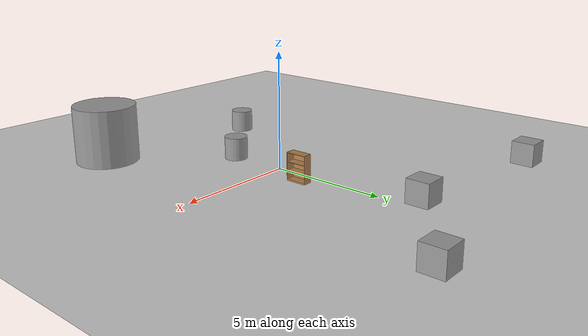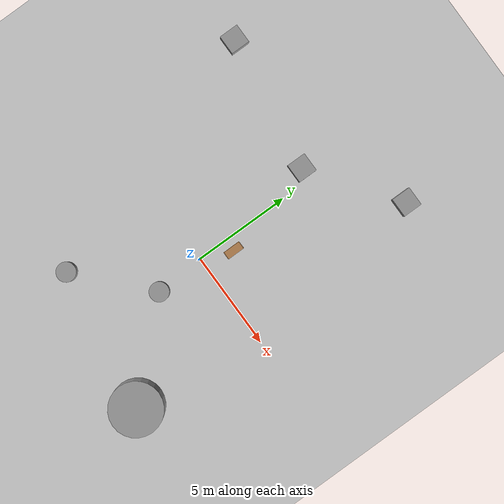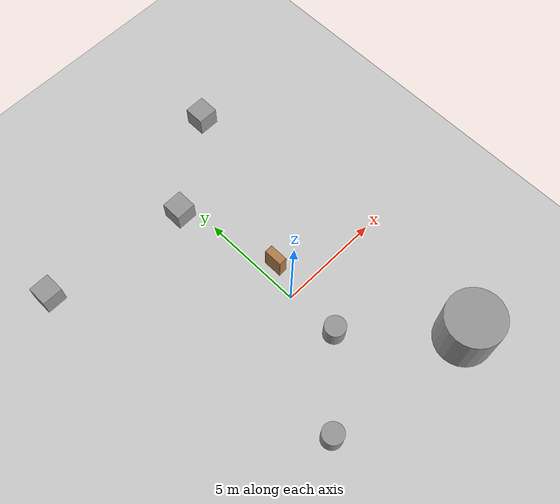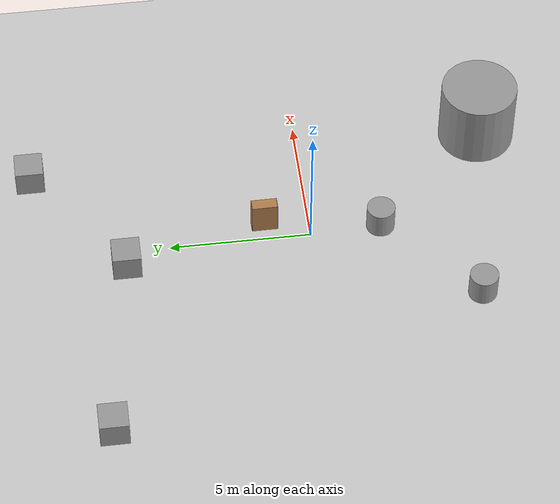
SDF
<sdf version="1.7">
 <world name="default">
  <light name="sun" type="directional">
   <cast_shadows>0</cast_shadows>
   <pose>0 0 10 0 -0 0</pose>
   <diffuse>0.8 0.8 0.8 1</diffuse>
   <specular>0.2 0.2 0.2 1</specular>
   <attenuation>
    <range>1000</range>
    <constant>0.9</constant>
    <linear>0.01</linear>
    <quadratic>0.001</quadratic>
   </attenuation>
   <direction>-0.5 0.1 -0.9</direction>
   <spot><inner_angle>0</inner_angle><outer_angle>0</outer_angle><falloff>0</falloff></spot>
  </light>
  <model name="ground_plane">
   <static>1</static>
   <link name="link">
    <collision name="collision">
     <geometry><plane><normal>0 0 1</normal><size>1000 1000</size></plane></geometry>
     <surface>
      <contact><collide_bitmask>65535</collide_bitmask></contact>
      <friction><ode><mu>100</mu><mu2>50</mu2></ode></friction>
     </surface>
    </collision>
    <visual name="visual">
     <cast_shadows>0</cast_shadows>
     <geometry><plane><normal>0 0 1</normal><size>100 100</size></plane></geometry>
     <material>
      <script><uri>file://media/materials/scripts/gazebo.material</uri><name>Gazebo/Grey</name></script>
     </material>
    </visual>
   </link>
  </model>
  <gravity>0 0 -9.8</gravity>
  <physics type="ode">
   <max_step_size>0.001</max_step_size>
   <real_time_factor>1</real_time_factor>
   <real_time_update_rate>1000</real_time_update_rate>
  </physics>
  <scene>
   <ambient>0.4 0.4 0.4 1</ambient>
   <background>0.7 0.7 0.7 1</background>
   <shadows>0</shadows>
   <origin_visual>0</origin_visual>
  </scene>
  <audio><device>default</device></audio>
  <spherical_coordinates>
   <surface_model>EARTH_WGS84</surface_model>
   <latitude_deg>0</latitude_deg>
   <longitude_deg>0</longitude_deg>
   <elevation>0</elevation>
   <heading_deg>0</heading_deg>
  </spherical_coordinates>
  <model name="bookshelf">
   <static>1</static>
   <link name="link">
    <inertial><mass>1</mass></inertial>
    <visual name="visual1">
     <pose>0 0.005 0.6 0 -0 0</pose>
     <geometry><box><size>0.9 0.01 1.2</size></box></geometry>
     <material>
      <script><uri>file://media/materials/scripts/gazebo.material</uri><name>Gazebo/Wood</name></script>
     </material>
    </visual>
    <visual name="visual2">
     <pose>0.45 -0.195 0.6 0 -0 0</pose>
     <geometry><box><size>0.02 0.4 1.2</size></box></geometry>
     <material>
      <script><uri>file://media/materials/scripts/gazebo.material</uri><name>Gazebo/Wood</name></script>
     </material>
    </visual>
    <visual name="visual3">
     <pose>-0.45 -0.195 0.6 0 -0 0</pose>
     <geometry><box><size>0.02 0.4 1.2</size></box></geometry>
     <material>
      <script><uri>file://media/materials/scripts/gazebo.material</uri><name>Gazebo/Wood</name></script>
     </material>
    </visual>
    <visual name="visual4">
     <pose>0 -0.195 0.03 0 -0 0</pose>
     <geometry><box><size>0.88 0.4 0.06</size></box></geometry>
     <material>
      <script><uri>file://media/materials/scripts/gazebo.material</uri><name>Gazebo/Wood</name></script>
     </material>
    </visual>
    <visual name="visual5">
     <pose>0 -0.195 1.19 0 -0 0</pose>
     <geometry><box><size>0.88 0.4 0.02</size></box></geometry>
     <material>
      <script><uri>file://media/materials/scripts/gazebo.material</uri><name>Gazebo/Wood</name></script>
     </material>
    </visual>
    <visual name="visual6">
     <pose>0 -0.195 0.43 0 -0 0</pose>
     <geometry><box><size>0.88 0.4 0.02</size></box></geometry>
     <material>
      <script><uri>file://media/materials/scripts/gazebo.material</uri><name>Gazebo/Wood</name></script>
     </material>
    </visual>
    <visual name="visual7">
     <pose>0 -0.195 0.8 0 -0 0</pose>
     <geometry><box><size>0.88 0.4 0.02</size></box></geometry>
     <material>
      <script><uri>file://media/materials/scripts/gazebo.material</uri><name>Gazebo/Wood</name></script>
     </material>
    </visual>
   </link>
   <pose>0.43 1.58 0 0 -0 1.57611</pose>
  </model>
  <magnetic_field>6e-06 2.3e-05 -4.2e-05</magnetic_field>
  <atmosphere type="adiabatic"/>
  <model name="unit_cylinder">
   <pose>0.121399 -2.50056 0.5 0 -0 0</pose>
   <link name="link">
    <inertial>
     <mass>1</mass>
     <inertia><ixx>0.145833</ixx><ixy>0</ixy><ixz>0</ixz><iyy>0.145833</iyy><iyz>0</iyz><izz>0.125</izz></inertia>
    </inertial>
    <collision name="collision">
     <geometry><cylinder><radius>0.5</radius><length>1</length></cylinder></geometry>
    </collision>
    <visual name="visual">
     <geometry><cylinder><radius>0.5</radius><length>1</length></cylinder></geometry>
     <material>
      <script><name>Gazebo/Grey</name><uri>file://media/materials/scripts/gazebo.material</uri></script>
     </material>
    </visual>
   </link>
  </model>
  <model name="unit_box">
   <pose>-0.654514 6.57786 0.5 0 -0 0</pose>
   <link name="link">
    <inertial>
     <mass>1</mass>
     <inertia>
      <ixx>0.166667</ixx>
      <ixy>0</ixy>
      <ixz>0</ixz>
      <iyy>0.166667</iyy>
      <iyz>0</iyz>
      <izz>0.166667</izz>
     </inertia>
    </inertial>
    <collision name="collision"><geometry><box><size>1 1 1</size></box></geometry></collision>
    <visual name="visual">
     <geometry><box><size>1 1 1</size></box></geometry>
     <material>
      <script><name>Gazebo/Grey</name><uri>file://media/materials/scripts/gazebo.material</uri></script>
     </material>
    </visual>
   </link>
  </model>
  <model name="unit_cylinder_0">
   <pose>-3.29031 -5.5623 0.5 0 -0 0</pose>
   <link name="link">
    <inertial>
     <mass>1</mass>
     <inertia><ixx>0.145833</ixx><ixy>0</ixy><ixz>0</ixz><iyy>0.145833</iyy><iyz>0</iyz><izz>0.125</izz></inertia>
    </inertial>
    <collision name="collision">
     <geometry><cylinder><radius>0.5</radius><length>1</length></cylinder></geometry>
    </collision>
    <visual name="visual">
     <geometry><cylinder><radius>0.5</radius><length>1</length></cylinder></geometry>
     <material>
      <script><name>Gazebo/Grey</name><uri>file://media/materials/scripts/gazebo.material</uri></script>
     </material>
    </visual>
   </link>
  </model>
  <model name="unit_box_0">
   <pose>3.64964 9.69064 0.5 0 -0 0</pose>
   <link name="link">
    <inertial>
     <mass>1</mass>
     <inertia>
      <ixx>0.166667</ixx>
      <ixy>0</ixy>
      <ixz>0</ixz>
      <iyy>0.166667</iyy>
      <iyz>0</iyz>
      <izz>0.166667</izz>
     </inertia>
    </inertial>
    <collision name="collision"><geometry><box><size>1 1 1</size></box></geometry></collision>
    <visual name="visual">
     <geometry><box><size>1 1 1</size></box></geometry>
     <material>
      <script><name>Gazebo/Grey</name><uri>file://media/materials/scripts/gazebo.material</uri></script>
     </material>
    </visual>
   </link>
  </model>
  <model name="unit_box_1">
   <pose>-7.57719 7.59612 0.5 0 -0 0</pose>
   <link name="link">
    <inertial>
     <mass>1</mass>
     <inertia>
      <ixx>0.166667</ixx>
      <ixy>0</ixy>
      <ixz>0</ixz>
      <iyy>0.166667</iyy>
      <iyz>0</iyz>
      <izz>0.166667</izz>
     </inertia>
    </inertial>
    <collision name="collision"><geometry><box><size>1 1 1</size></box></geometry></collision>
    <visual name="visual">
     <geometry><box><size>1 1 1</size></box></geometry>
     <material>
      <script><name>Gazebo/Grey</name><uri>file://media/materials/scripts/gazebo.material</uri></script>
     </material>
    </visual>
   </link>
  </model>
  <model name="unit_cylinder_1_clone">
   <pose>3.98185 -6.61014 1.25333 0 -0 3e-06</pose>
   <link name="link">
    <inertial>
     <mass>1</mass>
     <inertia><ixx>0.145833</ixx><ixy>0</ixy><ixz>0</ixz><iyy>0.145833</iyy><iyz>0</iyz><izz>0.125</izz></inertia>
    </inertial>
    <collision name="collision">
     <geometry><cylinder><radius>1.35468</radius><length>2.50666</length></cylinder></geometry>
    </collision>
    <visual name="visual">
     <geometry><cylinder><radius>1.35468</radius><length>2.50666</length></cylinder></geometry>
     <material>
      <script><name>Gazebo/Grey</name><uri>file://media/materials/scripts/gazebo.material</uri></script>
     </material>
    </visual>
   </link>
  </model>
  <plugin name="gazebo_ros_state" filename="libgazebo_ros_state.so">
   <ros><namespace>/gazebo</namespace></ros>
   <update_rate>1.0</update_rate>
  </plugin>
 </world>
</sdf>
